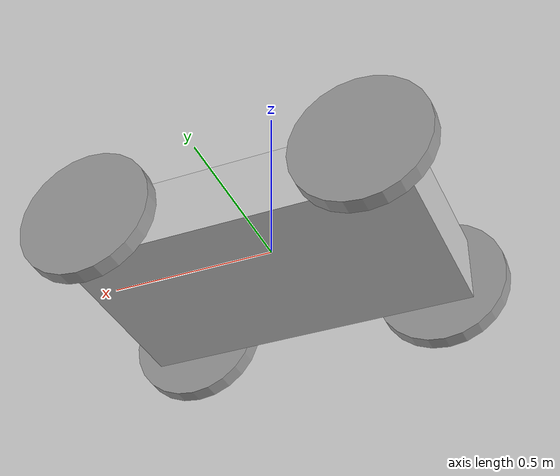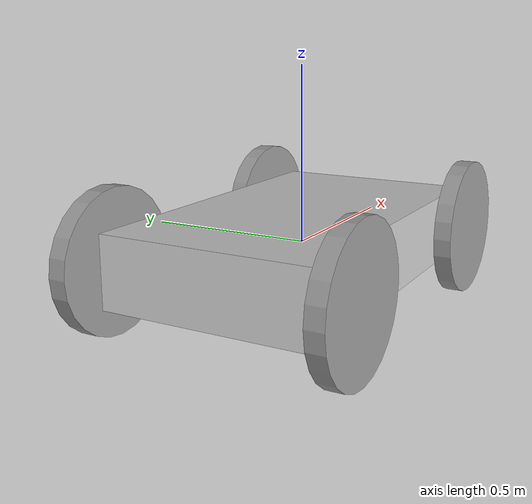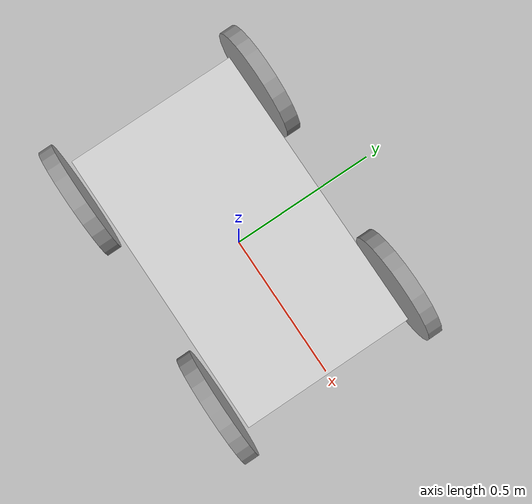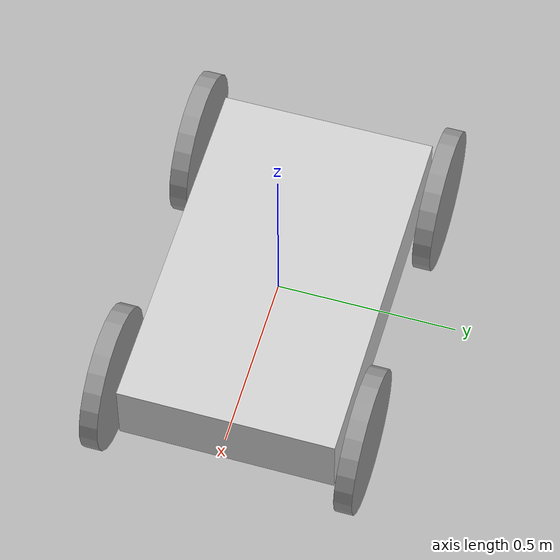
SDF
<?xml version="1.0" ?>
<sdf version="1.6">
  <model name="tank_drive_robot">
    <!-- Static attribute defines whether the robot is fixed in space or can move -->
    <static>false</static>

    <!-- Define the base link -->
    <link name="base_link">
      <pose>0 0 0 0 0 0</pose>
      <collision name="collision_base">
        <geometry>
          <box>
            <size>1.0 0.6 0.2</size> <!-- Dimensions of the base chassis -->
          </box>
        </geometry>
        <surface>
          <friction>
            <ode>
              <mu>1.0</mu>
              <mu2>1.0</mu2>
            </ode>
          </friction>
        </surface>
      </collision>
      <visual name="visual_base">
        <geometry>
          <box>
            <size>1.0 0.6 0.2</size> <!-- Same size as collision -->
          </box>
        </geometry>
        <material>
          <ambient>0.2 0.2 0.2 1</ambient>
          <diffuse>0.8 0.8 0.8 1</diffuse>
        </material>
      </visual>
    </link>

    <!-- Define wheels -->
    <!-- Left Front Wheel -->
    <link name="left_front_wheel">
      <pose>-0.4 0.35 0 -1.5707 0 0</pose> <!-- Position relative to base link -->
      <collision name="collision_left_front_wheel">
        <geometry>
          <cylinder>
            <radius>0.2</radius> <!-- Wheel radius -->
            <length>0.05</length> <!-- Wheel width -->
          </cylinder>
        </geometry>
      </collision>
      <visual name="visual_left_front_wheel">
        <geometry>
          <cylinder>
            <radius>0.2</radius>
            <length>0.05</length>
          </cylinder>
        </geometry>
        <material>
          <ambient>0.2 0.2 0.2 1</ambient>
          <diffuse>0.6 0.6 0.6 1</diffuse>
        </material>
      </visual>
    </link>

    <!-- Right Front Wheel -->
    <link name="right_front_wheel">
      <pose>-0.4 -0.35 0 -1.5707 0 0</pose>
      <collision name="collision_right_front_wheel">
        <geometry>
          <cylinder>
            <radius>0.2</radius>
            <length>0.05</length>
          </cylinder>
        </geometry>
      </collision>
      <visual name="visual_right_front_wheel">
        <geometry>
          <cylinder>
            <radius>0.2</radius>
            <length>0.05</length>
          </cylinder>
        </geometry>
        <material>
          <ambient>0.2 0.2 0.2 1</ambient>
          <diffuse>0.6 0.6 0.6 1</diffuse>
        </material>
      </visual>
    </link>

    <!-- Left Rear Wheel -->
    <link name="left_rear_wheel">
      <pose>0.4 0.35 0 -1.5707 0 0</pose>
      <collision name="collision_left_rear_wheel">
        <geometry>
          <cylinder>
            <radius>0.2</radius>
            <length>0.05</length>
          </cylinder>
        </geometry>
      </collision>
      <visual name="visual_left_rear_wheel">
        <geometry>
          <cylinder>
            <radius>0.2</radius>
            <length>0.05</length>
          </cylinder>
        </geometry>
        <material>
          <ambient>0.2 0.2 0.2 1</ambient>
          <diffuse>0.6 0.6 0.6 1</diffuse>
        </material>
      </visual>
    </link>

    <!-- Right Rear Wheel -->
    <link name="right_rear_wheel">
      <pose>0.4 -0.35 0 -1.5707 0 0</pose>
      <collision name="collision_right_rear_wheel">
        <geometry>
          <cylinder>
            <radius>0.2</radius>
            <length>0.05</length>
          </cylinder>
        </geometry>
      </collision>
      <visual name="visual_right_rear_wheel">
        <geometry>
          <cylinder>
            <radius>0.2</radius>
            <length>0.05</length>
          </cylinder>
        </geometry>
        <material>
          <ambient>0.2 0.2 0.2 1</ambient>
          <diffuse>0.6 0.6 0.6 1</diffuse>
        </material>
      </visual>
    </link>

    <!-- Joints -->
    <!-- Front Left Wheel Joint -->
    <joint name="left_front_wheel_joint" type="revolute">
      <parent>base_link</parent>
      <child>left_front_wheel</child>
      <axis>
        <xyz>0 1 0</xyz>
        <limit>
          <lower>-1e16</lower>
          <upper>1e16</upper>
       </limit>
      </axis>
    </joint>

    <!-- Front Right Wheel Joint -->
    <joint name="right_front_wheel_joint" type="revolute">
      <parent>base_link</parent>
      <child>right_front_wheel</child>
      <axis>
        <xyz>0 1 0</xyz>
        <limit>
          <lower>-1e16</lower>
          <upper>1e16</upper>
        </limit>
      </axis>
    </joint>

    <!-- Rear Left Wheel Joint -->
    <joint name="left_rear_wheel_joint" type="revolute">
      <parent>base_link</parent>
      <child>left_rear_wheel</child>
      <axis>
        <xyz>0 1 0</xyz>
        <limit>
          <lower>-1e16</lower>
          <upper>1e16</upper>
        </limit>
      </axis>
    </joint>

    <!-- Rear Right Wheel Joint -->
    <joint name="right_rear_wheel_joint" type="revolute">
      <parent>base_link</parent>
      <child>right_rear_wheel</child>
      <axis>
        <xyz>0 1 0</xyz>
        <limit>
          <lower>-1e16</lower>
          <upper>1e16</upper>
        </limit>
      </axis>
    </joint>

    <!-- Plugins -->
    <plugin name="differential_drive_controller" filename="libgazebo_ros_diff_drive.so">
      <ros>
        <namespace>/</namespace>
        <remapping>cmd_vel:=/cmd_vel</remapping>
      </ros>
      <left_joint>left_front_wheel_joint</left_joint>
      <left_joint>left_rear_wheel_joint</left_joint>
      <right_joint>right_front_wheel_joint</right_joint>
      <right_joint>right_rear_wheel_joint</right_joint>
      <wheel_separation>0.7</wheel_separation>
      <wheel_radius>0.2</wheel_radius>
      <update_rate>100</update_rate>
    </plugin>

  </model>
</sdf>
